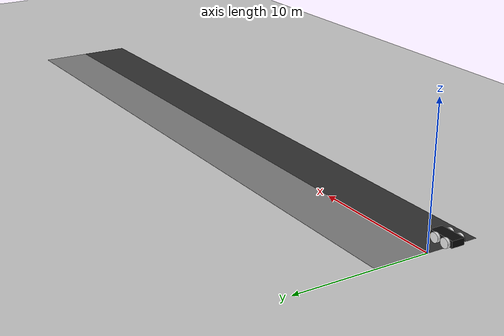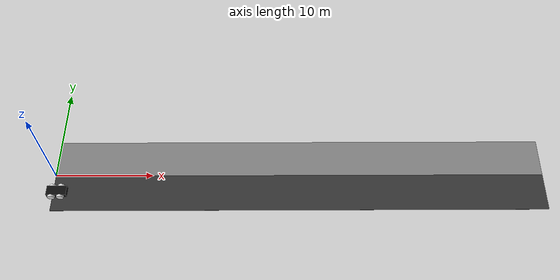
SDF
<?xml version="1.0" ?>
<sdf version="1.9">
    <world name="car_world">

        <physics name="1ms" type="ignored">
            <max_step_size>0.001</max_step_size>
            <real_time_factor>1.0</real_time_factor>
        </physics>

        <plugin filename="gz-sim-physics-system" name="gz::sim::systems::Physics"></plugin>
        <plugin filename="gz-sim-user-commands-system" name="gz::sim::systems::UserCommands"></plugin>
        <plugin filename="gz-sim-scene-broadcaster-system" name="gz::sim::systems::SceneBroadcaster"></plugin>
        <plugin filename="gz-sim-sensors-system" name="gz::sim::systems::Sensors">
            <render_engine>ogre2</render_engine>
        </plugin>

        <light type="directional" name="sun">
            <cast_shadows>true</cast_shadows>
            <pose>0 0 10 0 0 0</pose>
            <diffuse>0.8 0.8 0.8 1</diffuse>
            <specular>0.2 0.2 0.2 1</specular>
            <attenuation>
                <range>1000</range>
                <constant>0.9</constant>
                <linear>0.01</linear>
                <quadratic>0.001</quadratic>
            </attenuation>
            <direction>-0.5 0.1 -0.9</direction>
        </light>

        <model name="ground_plane">
            <static>true</static>
            <link name="link">
                <collision name="collision">
                    <geometry>
                        <plane>
                            <normal>0 0 1</normal>
                            <size>100 100</size>
                        </plane>
                    </geometry>
                </collision>
                <visual name="visual">
                    <geometry>
                        <plane>
                            <normal>0 0 1</normal>
                            <size>100 100</size>
                        </plane>
                    </geometry>
                    <material>
                        <ambient>0.8 0.8 0.8 1</ambient>
                        <diffuse>0.8 0.8 0.8 1</diffuse>
                        <specular>0.8 0.8 0.8 1</specular>
                    </material>
                </visual>
            </link>
        </model>

        <model name="right_lane">
            <static>true</static>
            <pose>25 -2.0 0 0 0 0</pose>
            <link name="link">
                <visual name="visual">
                    <geometry>
                        <box>
                            <size>50 4 0.01</size>
                        </box>
                    </geometry>
                    <material>
                        <ambient>0.2 0.2 0.2 1</ambient>
                        <diffuse>0.2 0.2 0.2 1</diffuse>
                        <specular>0.1 0.1 0.1 1</specular>
                    </material>
                </visual>
            </link>
        </model>

        <model name="left_lane">
            <static>true</static>
            <pose>25 2.0 0 0 0 0</pose>
            <link name="link">
                <visual name="visual">
                    <geometry>
                        <box>
                            <size>50 4 0.01</size>
                        </box>
                    </geometry>
                    <material>
                        <ambient>0.5 0.5 0.5 1</ambient>
                        <diffuse>0.5 0.5 0.5 1</diffuse>
                        <specular>0.1 0.1 0.1 1</specular>
                    </material>
                </visual>
            </link>
        </model>

        <model name='vehicle_blue' canonical_link='chassis'>
            <pose relative_to='world'>0 -2.0 0 0 0 0</pose>

            <!--Karosszéria-->
            <link name='chassis'>
                <pose relative_to='__model__'>0.5 0 0.4 0 0 0</pose>
                <inertial>
                    <mass>1.14395</mass>
                    <inertia>
                        <ixx>0.095329</ixx>
                        <ixy>0</ixy>
                        <ixz>0</ixz>
                        <iyy>0.381317</iyy>
                        <iyz>0</iyz>
                        <izz>0.476646</izz>
                    </inertia>
                </inertial>
                <visual name='visual'>
                    <geometry>
                        <box>
                            <size>2.0 1.0 0.5</size>
                        </box>
                    </geometry>
                    <material>
                        <ambient>0.05 0.05 0.05 1</ambient>
                        <diffuse>0.05 0.05 0.05 1</diffuse>
                        <specular>0.1 0.1 0.1 1</specular>
                    </material>
                </visual>
                <collision name='collision'>
                    <geometry>
                        <box>
                            <size>2.0 1.0 0.5</size>
                        </box>
                    </geometry>
                </collision>
            </link>

            <!--Bal kerék-->
            <link name='left_wheel'>
                <pose relative_to="chassis">-0.5 0.6 -0.05 -1.5707 0 0</pose>
                <inertial>
                    <mass>1</mass>
                    <inertia>
                        <ixx>0.043333</ixx>
                        <ixy>0</ixy>
                        <ixz>0</ixz>
                        <iyy>0.043333</iyy>
                        <iyz>0</iyz>
                        <izz>0.08</izz>
                    </inertia>
                </inertial>
                <visual name='visual'>
                    <geometry>
                        <cylinder>
                            <radius>0.35</radius>
                            <length>0.2</length>
                        </cylinder>
                    </geometry>
                    <material>
                        <ambient>0.9 0.9 0.9 1</ambient>
                        <diffuse>0.9 0.9 0.9 1</diffuse>
                        <specular>0.3 0.3 0.3 1</specular>
                    </material>
                </visual>
                <collision name='collision'>
                    <geometry>
                        <cylinder>
                            <radius>0.35</radius>
                            <length>0.2</length>
                        </cylinder>
                    </geometry>
                </collision>
            </link>

            <!--Jobb kerék-->
            <link name='right_wheel'>
                <pose relative_to="chassis">-0.5 -0.6 -0.05 -1.5707 0 0</pose>
                <inertial>
                    <mass>1</mass>
                    <inertia>
                        <ixx>0.043333</ixx>
                        <ixy>0</ixy>
                        <ixz>0</ixz>
                        <iyy>0.043333</iyy>
                        <iyz>0</iyz>
                        <izz>0.08</izz>
                    </inertia>
                </inertial>
                <visual name='visual'>
                    <geometry>
                        <cylinder>
                            <radius>0.35</radius>
                            <length>0.2</length>
                        </cylinder>
                    </geometry>
                    <material>
                        <ambient>0.9 0.9 0.9 1</ambient>
                        <diffuse>0.9 0.9 0.9 1</diffuse>
                        <specular>0.3 0.3 0.3 1</specular>
                    </material>
                </visual>
                <collision name='collision'>
                    <geometry>
                        <cylinder>
                            <radius>0.35</radius>
                            <length>0.2</length>
                        </cylinder>
                    </geometry>
                </collision>
            </link>

            <!--Tetszőleges keret-->
            <frame name="caster_frame" attached_to='chassis'>
                <pose>0.8 0 -0.2 0 0 0</pose>
            </frame>

            <!--Első bal kerék-->
            <link name='front_left_wheel'>
                <pose relative_to="chassis">0.4 0.6 -0.05 -1.5707 0 0</pose>
                <inertial>
                    <mass>1</mass>
                    <inertia>
                        <ixx>0.043333</ixx>
                        <ixy>0</ixy>
                        <ixz>0</ixz>
                        <iyy>0.043333</iyy>
                        <iyz>0</iyz>
                        <izz>0.08</izz>
                    </inertia>
                </inertial>
                <visual name='visual'>
                    <geometry>
                        <cylinder>
                            <radius>0.35</radius>
                            <length>0.2</length>
                        </cylinder>
                    </geometry>
                    <material>
                        <ambient>0.9 0.9 0.9 1</ambient>
                        <diffuse>0.9 0.9 0.9 1</diffuse>
                        <specular>0.3 0.3 0.3 1</specular>
                    </material>
                </visual>
                <collision name='collision'>
                    <geometry>
                        <cylinder>
                            <radius>0.35</radius>
                            <length>0.2</length>
                        </cylinder>
                    </geometry>
                </collision>
            </link>

            <!--Első jobb kerék-->
            <link name='front_right_wheel'>
                <pose relative_to="chassis">0.4 -0.6 -0.05 -1.5707 0 0</pose>
                <inertial>
                    <mass>1</mass>
                    <inertia>
                        <ixx>0.043333</ixx>
                        <ixy>0</ixy>
                        <ixz>0</ixz>
                        <iyy>0.043333</iyy>
                        <iyz>0</iyz>
                        <izz>0.08</izz>
                    </inertia>
                </inertial>
                <visual name='visual'>
                    <geometry>
                        <cylinder>
                            <radius>0.35</radius>
                            <length>0.2</length>
                        </cylinder>
                    </geometry>
                    <material>
                        <ambient>0.9 0.9 0.9 1</ambient>
                        <diffuse>0.9 0.9 0.9 1</diffuse>
                        <specular>0.3 0.3 0.3 1</specular>
                    </material>
                </visual>
                <collision name='collision'>
                    <geometry>
                        <cylinder>
                            <radius>0.35</radius>
                            <length>0.2</length>
                        </cylinder>
                    </geometry>
                </collision>
            </link>

            <!--Bal kerék csatlakozás-->
            <joint name='left_wheel_joint' type='revolute'>
                <pose relative_to='left_wheel'/>
                <parent>chassis</parent>
                <child>left_wheel</child>
                <axis>
                    <xyz expressed_in='__model__'>0 1 0</xyz>
                    <limit>
                        <lower>-1.79769e+308</lower>
                        <upper>1.79769e+308</upper>
                    </limit>
                </axis>
            </joint>

            <!--Jobb kerék csatlakozás-->
            <joint name='right_wheel_joint' type='revolute'>
                <pose relative_to='right_wheel'/>
                <parent>chassis</parent>
                <child>right_wheel</child>
                <axis>
                    <xyz expressed_in='__model__'>0 1 0</xyz>
                    <limit>
                        <lower>-1.79769e+308</lower>
                        <upper>1.79769e+308</upper>
                    </limit>
                </axis>
            </joint>

            <!--Első bal kerék csatlakozás-->
            <joint name='front_left_wheel_joint' type='revolute'>
                <pose relative_to='front_left_wheel'/>
                <parent>chassis</parent>
                <child>front_left_wheel</child>
                <axis>
                    <xyz expressed_in='__model__'>0 1 0</xyz>
                    <limit>
                        <lower>-1.79769e+308</lower>
                        <upper>1.79769e+308</upper>
                    </limit>
                </axis>
            </joint>

            <!--Első jobb kerék csatlakozás-->
            <joint name='front_right_wheel_joint' type='revolute'>
                <pose relative_to='front_right_wheel'/>
                <parent>chassis</parent>
                <child>front_right_wheel</child>
                <axis>
                    <xyz expressed_in='__model__'>0 1 0</xyz>
                    <limit>
                        <lower>-1.79769e+308</lower>
                        <upper>1.79769e+308</upper>
                    </limit>
                </axis>
            </joint>

        </model>

    </world>
</sdf>
